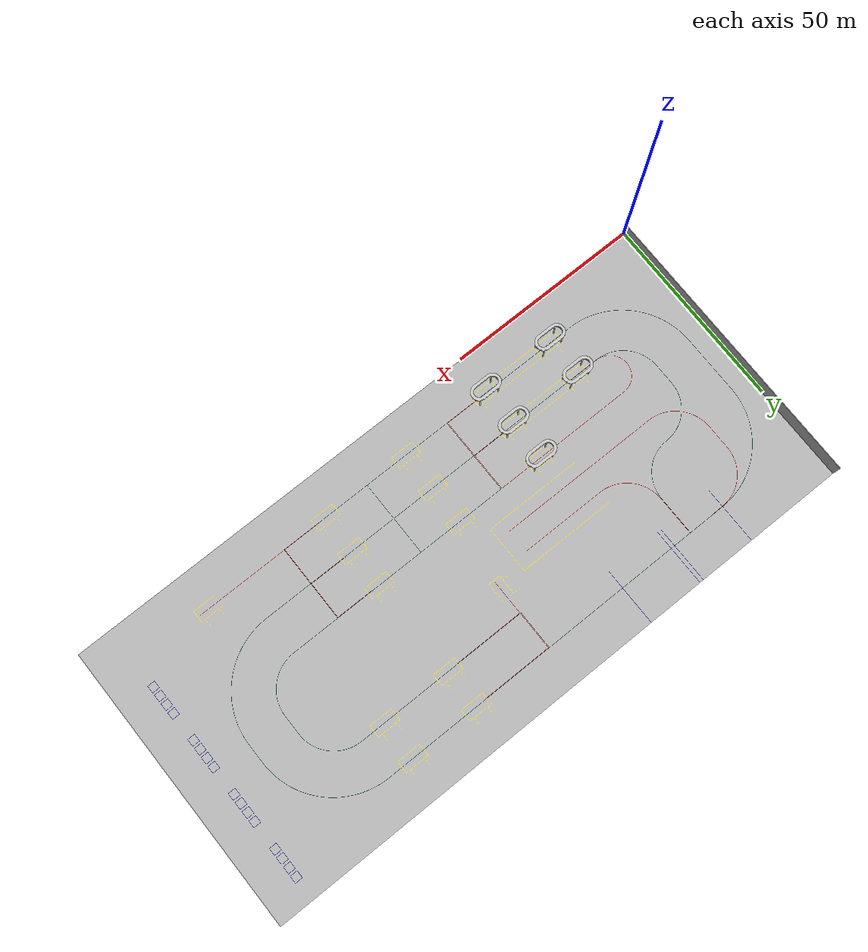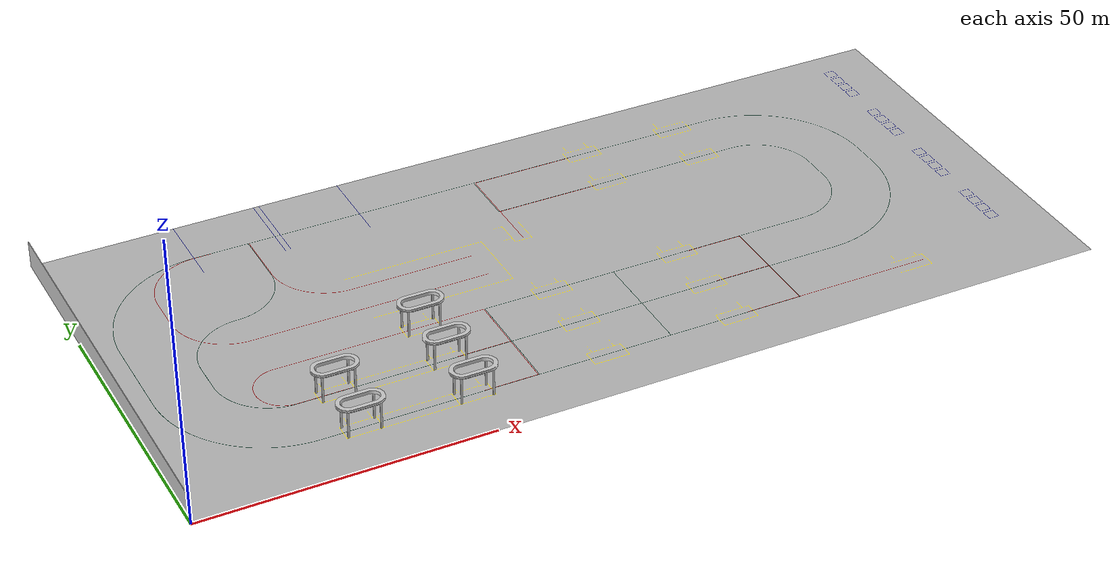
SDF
<sdf version="1.7">
 <world name="factory_ground">
  <model name="automobile_factory_Ground">
   <static>1</static>
   <pose>0 0 0 0.000523 -8.6e-05 -0</pose>
   <link name="link">
    <inertial>
     <mass>1000</mass>
     <inertia>
      <ixx>1.20008e+06</ixx>
      <ixy>0</ixy>
      <ixz>0</ixz>
      <iyy>8.33342e+06</iyy>
      <iyz>0</iyz>
      <izz>2.03333e+06</izz>
     </inertia>
    </inertial>
    <collision name="collision">
     <pose>80 37.5 0</pose>
     <geometry><plane><normal>0 0 1</normal><size>160 75</size></plane></geometry>
     <surface>
      <friction><ode><mu>100</mu><mu2>50</mu2><fdir1>0 0 0</fdir1><slip1>0</slip1><slip2>0</slip2></ode></friction>
     </surface>
    </collision>
    <visual name="visual">
     <geometry>
      <mesh><uri>model://automobile_factory_Ground/meshes/automobile_factory_Ground.dae</uri></mesh>
     </geometry>
     <meta><layer>1</layer></meta>
    </visual>
   </link>
   <static>1</static>
  </model>
  <model name="marker_1">
   <link name="marker">
    <visual name="visual">
     <geometry><box><size>0.1 0.1 1e-05</size></box></geometry>
     <material>
      <script>
       <uri>model://marker_1/materials/scripts</uri>
       <uri>model://marker_1/materials/textures</uri>
       <name>marker_material1</name>
      </script>
      <ambient>1 1 1 1</ambient>
      <diffuse>1 1 1 1</diffuse>
      <specular>0 0 0 1</specular>
      <emissive>1 1 1 0</emissive>
     </material>
    </visual>
    <collision name="collision"><geometry><box><size>0.1 0.1 1e-05</size></box></geometry></collision>
   </link>
   <link name="marker_pad">
    <pose relative_to="marker">0 0 -1e-05 0 -0 0</pose>
    <visual name="visual">
     <geometry><box><size>0.1 0.1 1e-05</size></box></geometry>
     <material>
      <lighting>1</lighting>
      <script><uri>file://media/materials/scripts/gazebo.material</uri><name>Gazebo/White</name></script>
      <ambient>0.3 0.3 0.3 1</ambient>
      <diffuse>0.7 0.7 0.7 1</diffuse>
      <specular>0.01 0.01 0.01 1</specular>
      <emissive>1 1 1 0</emissive>
     </material>
    </visual>
    <collision name="collision"><geometry><box><size>0.1 0.1 1e-05</size></box></geometry></collision>
   </link>
   <joint name="marker_JOINT_marker_pad" type="revolute">
    <parent>marker</parent>
    <child>marker_pad</child>
    <axis>
     <xyz>0 0 1</xyz>
     <limit><upper>0</upper><lower>0</lower></limit>
     <dynamics><spring_reference>0</spring_reference><spring_stiffness>0</spring_stiffness></dynamics>
    </axis>
   </joint>
   <static>1</static>
   <pose>32 10 0.046333 0 -0 0</pose>
  </model>
  <model name="marker_2">
   <link name="marker">
    <visual name="visual">
     <geometry><box><size>0.1 0.1 1e-05</size></box></geometry>
     <material>
      <script>
       <uri>model://marker_2/materials/scripts</uri>
       <uri>model://marker_2/materials/textures</uri>
       <name>marker_material2</name>
      </script>
      <ambient>1 1 1 1</ambient>
      <diffuse>1 1 1 1</diffuse>
      <specular>0 0 0 1</specular>
      <emissive>1 1 1 0</emissive>
     </material>
    </visual>
    <collision name="collision"><geometry><box><size>0.1 0.1 1e-05</size></box></geometry></collision>
   </link>
   <link name="marker_pad">
    <pose relative_to="marker">0 0 -1e-05 0 -0 0</pose>
    <visual name="visual">
     <geometry><box><size>0.1 0.1 1e-05</size></box></geometry>
     <material>
      <lighting>1</lighting>
      <script><uri>file://media/materials/scripts/gazebo.material</uri><name>Gazebo/White</name></script>
      <ambient>0.3 0.3 0.3 1</ambient>
      <diffuse>0.7 0.7 0.7 1</diffuse>
      <specular>0.01 0.01 0.01 1</specular>
      <emissive>1 1 1 0</emissive>
     </material>
    </visual>
    <collision name="collision"><geometry><box><size>0.1 0.1 1e-05</size></box></geometry></collision>
   </link>
   <joint name="marker_JOINT_marker_pad" type="revolute">
    <parent>marker</parent>
    <child>marker_pad</child>
    <axis>
     <xyz>0 0 1</xyz>
     <limit><upper>0</upper><lower>0</lower></limit>
     <dynamics><spring_reference>0</spring_reference><spring_stiffness>0</spring_stiffness></dynamics>
    </axis>
   </joint>
   <static>1</static>
   <pose>32 20 0.046333 0 -0 0</pose>
  </model>
  <model name="factory_wall1">
   <link name="link">
    <inertial>
     <inertia><ixx>0</ixx><ixy>0</ixy><ixz>0</ixz><iyy>0</iyy><iyz>0</iyz><izz>0</izz></inertia>
     <mass>0</mass>
    </inertial>
    <pose>0.05 35 0 0 -0 0</pose>
    <visual name="visual">
     <geometry><box><size>0.1 75 5</size></box></geometry>
     <material>
      <script>
       <uri>https://fuel.ignitionrobotics.org/1.0/makerspet/models/room_wall_2x5m/1/files/material/script</uri>
       <uri>https://fuel.ignitionrobotics.org/1.0/makerspet/models/room_wall_2x5m/1/files/material/textures</uri>
       <name>Custom/room_wall_2x5m</name>
      </script>
      <shader type="pixel"/>
     </material>
    </visual>
    <collision name="collision">
     <geometry><box><size>0.1 75 5</size></box></geometry>
     <surface>
      <friction>
       <ode><mu>1</mu><mu2>1</mu2><fdir1>0 0 0</fdir1><slip1>0</slip1><slip2>0</slip2></ode>
       <torsional>
        <coefficient>1</coefficient>
        <patch_radius>0</patch_radius>
        <surface_radius>0</surface_radius>
        <use_patch_radius>1</use_patch_radius>
        <ode><slip>0</slip></ode>
       </torsional>
      </friction>
      <bounce><restitution_coefficient>0</restitution_coefficient><threshold>1e+06</threshold></bounce>
      <contact>
       <collide_without_contact>0</collide_without_contact>
       <collide_without_contact_bitmask>1</collide_without_contact_bitmask>
       <collide_bitmask>1</collide_bitmask>
       <ode>
        <soft_cfm>0</soft_cfm>
        <soft_erp>0.2</soft_erp>
        <kp>1e+13</kp>
        <kd>1</kd>
        <max_vel>0.01</max_vel>
        <min_depth>0</min_depth>
       </ode>
       <bullet>
        <split_impulse>1</split_impulse>
        <split_impulse_penetration_threshold>-0.01</split_impulse_penetration_threshold>
        <soft_cfm>0</soft_cfm>
        <soft_erp>0.2</soft_erp>
        <kp>1e+13</kp>
        <kd>1</kd>
       </bullet>
      </contact>
     </surface>
    </collision>
   </link>
   <static>1</static>
   <pose>0 2.5 2.5 0 -0 0</pose>
  </model>
  <model name="cell">
   <static>1</static>
   <pose>29.539 8 0 0 -0 0</pose>
   <link name="link">
    <inertial>
     <mass>1</mass>
     <inertia><ixx>0.01</ixx><ixy>0</ixy><ixz>0</ixz><iyy>0.01</iyy><iyz>0</iyz><izz>0.01</izz></inertia>
    </inertial>
    <visual name="visual"><geometry><mesh><uri>model://cell/meshes/cell.dae</uri></mesh></geometry></visual>
    <collision name="collision">
     <geometry><mesh><uri>model://cell/meshes/cell.dae</uri><scale>1 1 1</scale></mesh></geometry>
     <surface>
      <friction><ode><mu>1</mu><mu2>1</mu2><fdir1>0 0 0</fdir1><slip1>0</slip1><slip2>0</slip2></ode></friction>
      <bounce><restitution_coefficient>0</restitution_coefficient><threshold>1e+06</threshold></bounce>
      <contact>
       <ode>
        <soft_cfm>0</soft_cfm>
        <soft_erp>0.2</soft_erp>
        <kp>1e+13</kp>
        <kd>1</kd>
        <max_vel>0.01</max_vel>
        <min_depth>0.001</min_depth>
       </ode>
      </contact>
     </surface>
    </collision>
   </link>
   <static>1</static>
  </model>
  <model name="cell_clone">
   <static>1</static>
   <pose>48.5633 8 0 0 -0 0</pose>
   <link name="link">
    <inertial>
     <mass>1</mass>
     <inertia><ixx>0.01</ixx><ixy>0</ixy><ixz>0</ixz><iyy>0.01</iyy><iyz>0</iyz><izz>0.01</izz></inertia>
    </inertial>
    <visual name="visual"><geometry><mesh><uri>model://cell/meshes/cell.dae</uri></mesh></geometry></visual>
    <collision name="collision">
     <geometry><mesh><uri>model://cell/meshes/cell.dae</uri><scale>1 1 1</scale></mesh></geometry>
     <surface>
      <friction><ode><mu>1</mu><mu2>1</mu2><fdir1>0 0 0</fdir1><slip1>0</slip1><slip2>0</slip2></ode></friction>
      <bounce><restitution_coefficient>0</restitution_coefficient><threshold>1e+06</threshold></bounce>
      <contact>
       <ode>
        <soft_cfm>0</soft_cfm>
        <soft_erp>0.2</soft_erp>
        <kp>1e+13</kp>
        <kd>1</kd>
        <max_vel>0.01</max_vel>
        <min_depth>0.001</min_depth>
       </ode>
      </contact>
     </surface>
    </collision>
   </link>
   <static>1</static>
  </model>
  <model name="cell_clone_0">
   <static>1</static>
   <pose>29.5313 18 0 0 -0 0</pose>
   <link name="link">
    <inertial>
     <mass>1</mass>
     <inertia><ixx>0.01</ixx><ixy>0</ixy><ixz>0</ixz><iyy>0.01</iyy><iyz>0</iyz><izz>0.01</izz></inertia>
    </inertial>
    <visual name="visual"><geometry><mesh><uri>model://cell/meshes/cell.dae</uri></mesh></geometry></visual>
    <collision name="collision">
     <geometry><mesh><uri>model://cell/meshes/cell.dae</uri><scale>1 1 1</scale></mesh></geometry>
     <surface>
      <friction><ode><mu>1</mu><mu2>1</mu2><fdir1>0 0 0</fdir1><slip1>0</slip1><slip2>0</slip2></ode></friction>
      <bounce><restitution_coefficient>0</restitution_coefficient><threshold>1e+06</threshold></bounce>
      <contact>
       <ode>
        <soft_cfm>0</soft_cfm>
        <soft_erp>0.2</soft_erp>
        <kp>1e+13</kp>
        <kd>1</kd>
        <max_vel>0.01</max_vel>
        <min_depth>0.001</min_depth>
       </ode>
      </contact>
     </surface>
    </collision>
   </link>
   <static>1</static>
  </model>
  <model name="cell_clone_0_clone">
   <static>1</static>
   <pose>48.5627 18 0 0 -0 0</pose>
   <link name="link">
    <inertial>
     <mass>1</mass>
     <inertia><ixx>0.01</ixx><ixy>0</ixy><ixz>0</ixz><iyy>0.01</iyy><iyz>0</iyz><izz>0.01</izz></inertia>
    </inertial>
    <visual name="visual"><geometry><mesh><uri>model://cell/meshes/cell.dae</uri></mesh></geometry></visual>
    <collision name="collision">
     <geometry><mesh><uri>model://cell/meshes/cell.dae</uri><scale>1 1 1</scale></mesh></geometry>
     <surface>
      <friction><ode><mu>1</mu><mu2>1</mu2><fdir1>0 0 0</fdir1><slip1>0</slip1><slip2>0</slip2></ode></friction>
      <bounce><restitution_coefficient>0</restitution_coefficient><threshold>1e+06</threshold></bounce>
      <contact>
       <ode>
        <soft_cfm>0</soft_cfm>
        <soft_erp>0.2</soft_erp>
        <kp>1e+13</kp>
        <kd>1</kd>
        <max_vel>0.01</max_vel>
        <min_depth>0.001</min_depth>
       </ode>
      </contact>
     </surface>
    </collision>
   </link>
   <static>1</static>
  </model>
  <model name="cell_clone_0_clone_0">
   <static>1</static>
   <pose>48.5992 28 0 0 -0 0</pose>
   <link name="link">
    <inertial>
     <mass>1</mass>
     <inertia><ixx>0.01</ixx><ixy>0</ixy><ixz>0</ixz><iyy>0.01</iyy><iyz>0</iyz><izz>0.01</izz></inertia>
    </inertial>
    <visual name="visual"><geometry><mesh><uri>model://cell/meshes/cell.dae</uri></mesh></geometry></visual>
    <collision name="collision">
     <geometry><mesh><uri>model://cell/meshes/cell.dae</uri><scale>1 1 1</scale></mesh></geometry>
     <surface>
      <friction><ode><mu>1</mu><mu2>1</mu2><fdir1>0 0 0</fdir1><slip1>0</slip1><slip2>0</slip2></ode></friction>
      <bounce><restitution_coefficient>0</restitution_coefficient><threshold>1e+06</threshold></bounce>
      <contact>
       <ode>
        <soft_cfm>0</soft_cfm>
        <soft_erp>0.2</soft_erp>
        <kp>1e+13</kp>
        <kd>1</kd>
        <max_vel>0.01</max_vel>
        <min_depth>0.001</min_depth>
       </ode>
      </contact>
     </surface>
    </collision>
   </link>
   <static>1</static>
  </model>
 </world>
</sdf>
